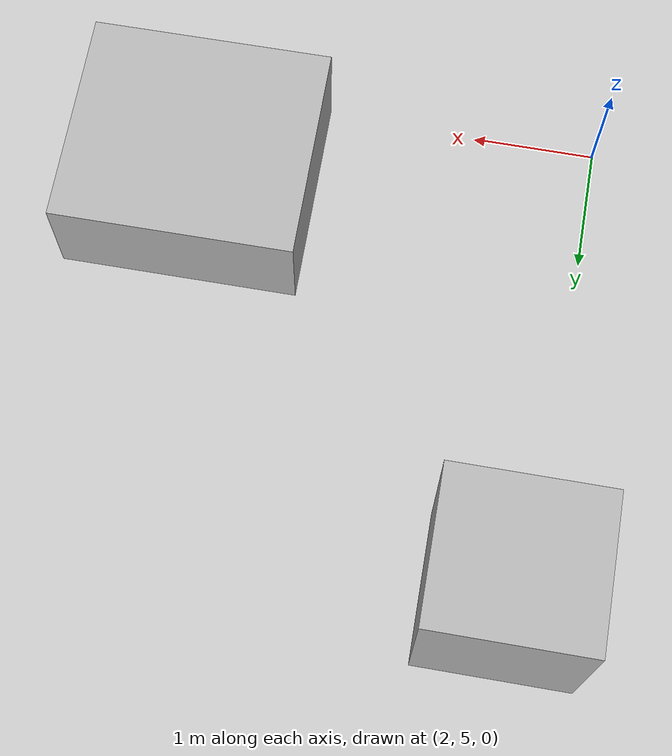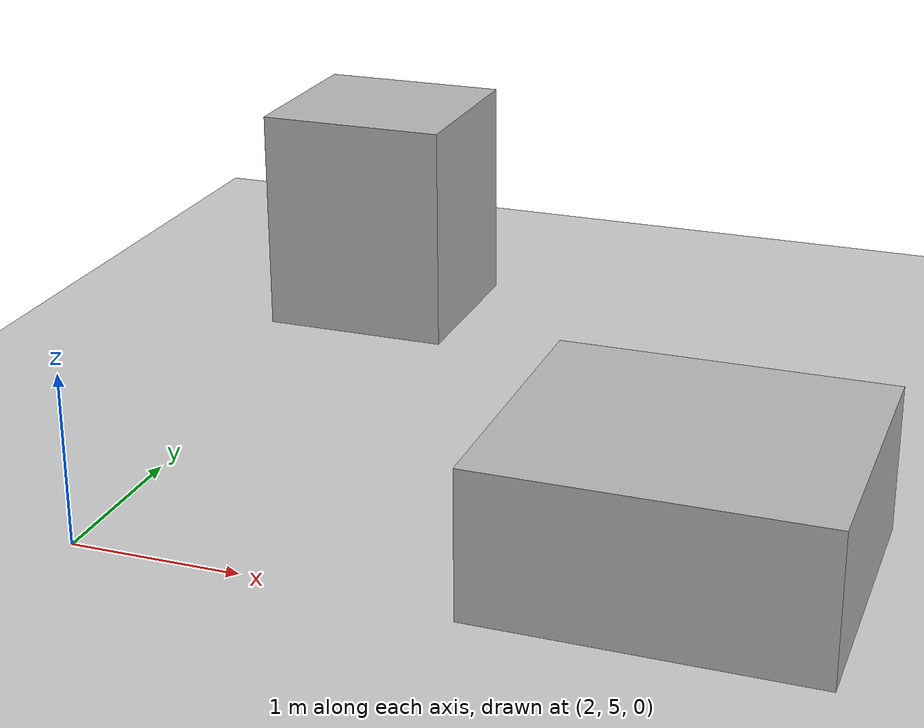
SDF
<?xml version="1.0" ?>
<sdf version="1.5">
  <world name="default">
    <include>
      <uri>model://sun</uri>
    </include>
    <include>
      <uri>model://ground_plane</uri>
    </include>

    <model name="obstacle_0">
      <pose>2.26 8.86 0.74 0 0 0</pose>
      <static>true</static>
      <link name="link">
        <collision name="collision">
          <geometry>
            <box>
              <size>1.23 1.17 1.47</size>
            </box>
          </geometry>
        </collision>
        <visual name="visual">
          <geometry>
            <box>
              <size>1.23 1.17 1.47</size>
            </box>
          </geometry>
        </visual>
      </link>
    </model>

    <model name="obstacle_1">
      <pose>5.2 5.79 0.43 0 0 0</pose>
      <static>true</static>
      <link name="link">
        <collision name="collision">
          <geometry>
            <box>
              <size>1.93 1.73 0.86</size>
            </box>
          </geometry>
        </collision>
        <visual name="visual">
          <geometry>
            <box>
              <size>1.93 1.73 0.86</size>
            </box>
          </geometry>
        </visual>
      </link>
    </model>

    <plugin
      name="bounding_box_plugin"
      filename="/home/andrea/ros_packages_aggiuntivi/devel/lib/libbounding_box_plugin.so"
    />

    </world>
</sdf>
